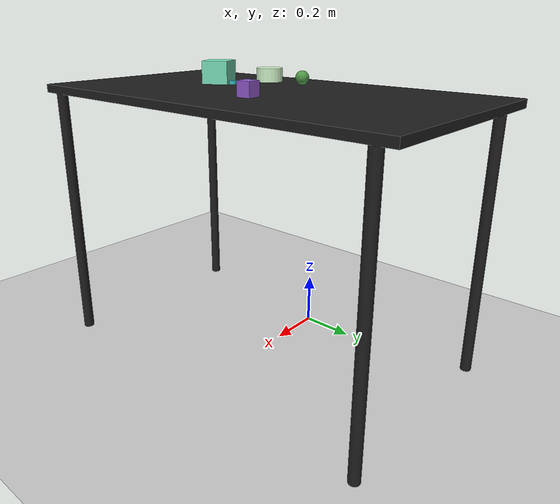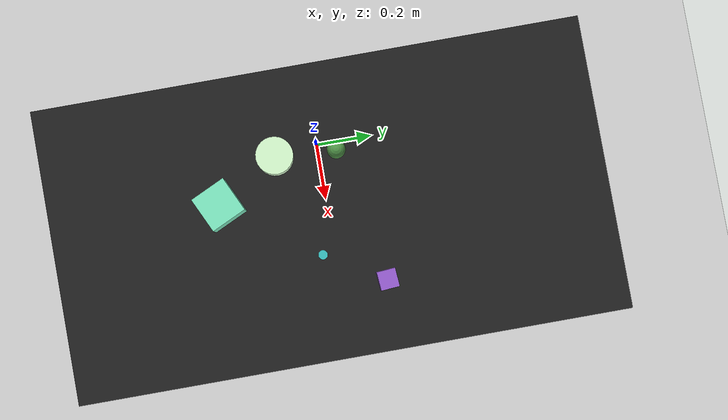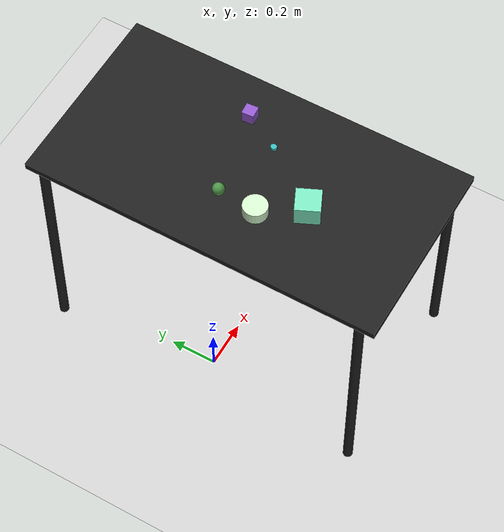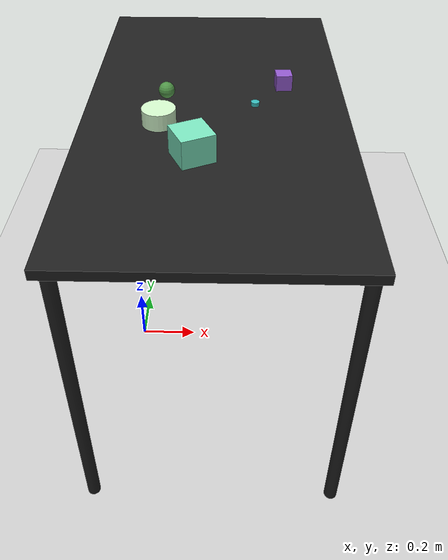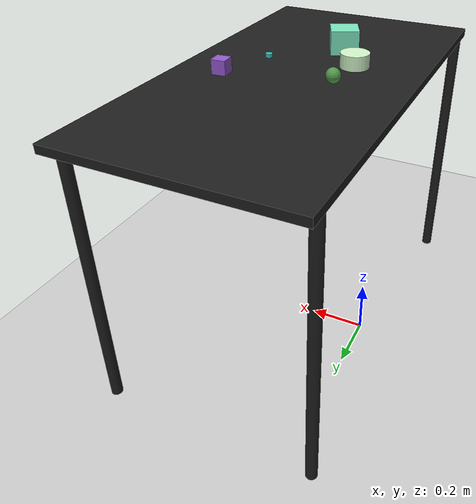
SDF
<?xml version="1.0" ?>
<sdf version="1.6">
  <world name="arm_world">
    <plugin filename="gz-sim-physics-system" name="gz::sim::systems::Physics">
      <engine>
        <filename>libgz-physics-bullet-featherstone-plugin.so</filename>
      </engine>
    </plugin>
    <plugin filename="gz-sim-user-commands-system" name="gz::sim::systems::UserCommands"/>
    <plugin filename="gz-sim-scene-broadcaster-system" name="gz::sim::systems::SceneBroadcaster"/>
    <plugin filename="gz-sim-sensors-system" name="gz::sim::systems::Sensors">
      <render_engine>ogre2</render_engine>
    </plugin>
    <gravity>0.0 0.0 -9.8</gravity>
    <scene>
      <shadows>false</shadows>
    </scene>
    <gui>
      <camera name="user_camera">
        <pose>0.75 -0.75 1.4 0 0.29 2.21</pose>
      </camera>
    </gui>
    <include>
      <uri>https://fuel.gazebosim.org/1.0/OpenRobotics/models/Sun</uri>
    </include>
    <model name="table">
      <static>true</static>
      <include>
        <uri>model://table</uri>
      </include>
      <pose>0.29 0 0 0 0 1.5708</pose>
    </model>
    <model name="ground_plane">
      <static>true</static>
      <link name="link">
        <collision name="collision">
          <geometry>
            <plane>
              <normal>0 0 1</normal>
            </plane>
          </geometry>
          <surface>
            <friction>
              <ode>
                <mu>1.0</mu>
                <mu2>1.0</mu2>
              </ode>
            </friction>
          </surface>
        </collision>
        <visual name="visual">
          <geometry>
            <plane>
              <normal>0 0 1</normal>
              <size>100 100</size>
            </plane>
          </geometry>
          <material>
            <ambient>0.8 0.8 0.8 1</ambient>
            <diffuse>0.8 0.8 0.8 1</diffuse>
            <specular>0.8 0.8 0.8 1</specular>
          </material>
        </visual>
      </link>
    </model>
    <model name="cylinder_l_0">
      <pose>0.127 -0.121 1.05 0 0 0.05</pose>
      <link name="cylinder_l_0_link">
        <inertial>
          <mass>0.05</mass>
          <inertia>
            <ixx>2.04e-7</ixx>
            <iyy>2.04e-7</iyy>
            <izz>3.9e-8</izz>
            <ixy>0</ixy>
            <ixz>0</ixz>
            <iyz>0</iyz>
          </inertia>
        </inertial>
        <collision name="cylinder_l_0_collision">
          <geometry>
            <cylinder>
              <radius>0.05</radius>
              <length>0.05</length>
            </cylinder>
          </geometry>
          <surface>
            <friction>
              <ode>
                <mu>0.8</mu>
                <mu2>0.8</mu2>
                <fdir1>0 0 1</fdir1>
                <slip1>0.001</slip1>
                <slip2>0.001</slip2>
              </ode>
              <torsional>
                <coefficient>0.1</coefficient>
                <surface_radius>0.015</surface_radius>
                <use_patch_radius>true</use_patch_radius>
              </torsional>
            </friction>
            <contact>
              <ode>
                <kp>1e5</kp>
                <kd>10</kd>
                <max_vel>0.1</max_vel>
                <min_depth>0.001</min_depth>
                <soft_cfm>0.01</soft_cfm>
                <soft_erp>0.2</soft_erp>
              </ode>
            </contact>
            <bounce>
              <restitution_coefficient>0.2</restitution_coefficient>
              <threshold>0.01</threshold>
            </bounce>
          </surface>
        </collision>
        <visual name="cylinder_l_0_visual">
          <geometry>
            <cylinder>
              <radius>0.05</radius>
              <length>0.05</length>
            </cylinder>
          </geometry>
          <material>
            <ambient>0.82 0.96 0.79 1</ambient>
            <diffuse>0.82 0.96 0.79 1</diffuse>
          </material>
        </visual>
        <velocity_decay>
          <linear>1</linear>
          <angular>1</angular>
        </velocity_decay>
      </link>
    </model>
    <model name="cylinder_s_1">
      <pose>0.407 -0.04 1.05 0 0 2.03</pose>
      <link name="cylinder_s_1_link">
        <inertial>
          <mass>0.05</mass>
          <inertia>
            <ixx>2.04e-7</ixx>
            <iyy>2.04e-7</iyy>
            <izz>3.9e-8</izz>
            <ixy>0</ixy>
            <ixz>0</ixz>
            <iyz>0</iyz>
          </inertia>
        </inertial>
        <collision name="cylinder_s_1_collision">
          <geometry>
            <cylinder>
              <radius>0.0125</radius>
              <length>0.0125</length>
            </cylinder>
          </geometry>
          <surface>
            <friction>
              <ode>
                <mu>0.8</mu>
                <mu2>0.8</mu2>
                <fdir1>0 0 1</fdir1>
                <slip1>0.001</slip1>
                <slip2>0.001</slip2>
              </ode>
              <torsional>
                <coefficient>0.1</coefficient>
                <surface_radius>0.015</surface_radius>
                <use_patch_radius>true</use_patch_radius>
              </torsional>
            </friction>
            <contact>
              <ode>
                <kp>1e5</kp>
                <kd>10</kd>
                <max_vel>0.1</max_vel>
                <min_depth>0.001</min_depth>
                <soft_cfm>0.01</soft_cfm>
                <soft_erp>0.2</soft_erp>
              </ode>
            </contact>
            <bounce>
              <restitution_coefficient>0.2</restitution_coefficient>
              <threshold>0.01</threshold>
            </bounce>
          </surface>
        </collision>
        <visual name="cylinder_s_1_visual">
          <geometry>
            <cylinder>
              <radius>0.0125</radius>
              <length>0.0125</length>
            </cylinder>
          </geometry>
          <material>
            <ambient>0.21 0.73 0.73 1</ambient>
            <diffuse>0.21 0.73 0.73 1</diffuse>
          </material>
        </visual>
        <velocity_decay>
          <linear>1</linear>
          <angular>1</angular>
        </velocity_decay>
      </link>
    </model>
    <model name="cube_m_2">
      <pose>0.5 0.117 1.05 0 0 3.22</pose>
      <link name="cube_m_2_link">
        <inertial>
          <mass>0.05</mass>
          <inertia>
            <ixx>2.04e-7</ixx>
            <iyy>2.04e-7</iyy>
            <izz>3.9e-8</izz>
            <ixy>0</ixy>
            <ixz>0</ixz>
            <iyz>0</iyz>
          </inertia>
        </inertial>
        <collision name="cube_m_2_collision">
          <geometry>
            <box>
              <size>0.05 0.05 0.05</size>
            </box>
          </geometry>
          <surface>
            <friction>
              <ode>
                <mu>0.8</mu>
                <mu2>0.8</mu2>
                <fdir1>0 0 1</fdir1>
                <slip1>0.001</slip1>
                <slip2>0.001</slip2>
              </ode>
              <torsional>
                <coefficient>0.1</coefficient>
                <surface_radius>0.015</surface_radius>
                <use_patch_radius>true</use_patch_radius>
              </torsional>
            </friction>
            <contact>
              <ode>
                <kp>1e5</kp>
                <kd>10</kd>
                <max_vel>0.1</max_vel>
                <min_depth>0.001</min_depth>
                <soft_cfm>0.01</soft_cfm>
                <soft_erp>0.2</soft_erp>
              </ode>
            </contact>
            <bounce>
              <restitution_coefficient>0.2</restitution_coefficient>
              <threshold>0.01</threshold>
            </bounce>
          </surface>
        </collision>
        <visual name="cube_m_2_visual">
          <geometry>
            <box>
              <size>0.05 0.05 0.05</size>
            </box>
          </geometry>
          <material>
            <ambient>0.57 0.35 0.8 1</ambient>
            <diffuse>0.57 0.35 0.8 1</diffuse>
          </material>
        </visual>
        <velocity_decay>
          <linear>1</linear>
          <angular>1</angular>
        </velocity_decay>
      </link>
    </model>
    <model name="sphere_m_3">
      <pose>0.137 0.043 1.05 0 0 5.67</pose>
      <link name="sphere_m_3_link">
        <inertial>
          <mass>0.05</mass>
          <inertia>
            <ixx>2.04e-7</ixx>
            <iyy>2.04e-7</iyy>
            <izz>3.9e-8</izz>
            <ixy>0</ixy>
            <ixz>0</ixz>
            <iyz>0</iyz>
          </inertia>
        </inertial>
        <collision name="sphere_m_3_collision">
          <geometry>
            <sphere>
              <radius>0.025</radius>
            </sphere>
          </geometry>
          <surface>
            <friction>
              <ode>
                <mu>0.8</mu>
                <mu2>0.8</mu2>
                <fdir1>0 0 1</fdir1>
                <slip1>0.001</slip1>
                <slip2>0.001</slip2>
              </ode>
              <torsional>
                <coefficient>0.1</coefficient>
                <surface_radius>0.015</surface_radius>
                <use_patch_radius>true</use_patch_radius>
              </torsional>
            </friction>
            <contact>
              <ode>
                <kp>1e5</kp>
                <kd>10</kd>
                <max_vel>0.1</max_vel>
                <min_depth>0.001</min_depth>
                <soft_cfm>0.01</soft_cfm>
                <soft_erp>0.2</soft_erp>
              </ode>
            </contact>
            <bounce>
              <restitution_coefficient>0.2</restitution_coefficient>
              <threshold>0.01</threshold>
            </bounce>
          </surface>
        </collision>
        <visual name="sphere_m_3_visual">
          <geometry>
            <sphere>
              <radius>0.025</radius>
            </sphere>
          </geometry>
          <material>
            <ambient>0.31 0.58 0.28 1</ambient>
            <diffuse>0.31 0.58 0.28 1</diffuse>
          </material>
        </visual>
        <velocity_decay>
          <linear>1</linear>
          <angular>1</angular>
        </velocity_decay>
      </link>
    </model>
    <model name="cube_l_4">
      <pose>0.231 -0.287 1.05 0 0 5.15</pose>
      <link name="cube_l_4_link">
        <inertial>
          <mass>0.05</mass>
          <inertia>
            <ixx>2.04e-7</ixx>
            <iyy>2.04e-7</iyy>
            <izz>3.9e-8</izz>
            <ixy>0</ixy>
            <ixz>0</ixz>
            <iyz>0</iyz>
          </inertia>
        </inertial>
        <collision name="cube_l_4_collision">
          <geometry>
            <box>
              <size>0.1 0.1 0.1</size>
            </box>
          </geometry>
          <surface>
            <friction>
              <ode>
                <mu>0.8</mu>
                <mu2>0.8</mu2>
                <fdir1>0 0 1</fdir1>
                <slip1>0.001</slip1>
                <slip2>0.001</slip2>
              </ode>
              <torsional>
                <coefficient>0.1</coefficient>
                <surface_radius>0.015</surface_radius>
                <use_patch_radius>true</use_patch_radius>
              </torsional>
            </friction>
            <contact>
              <ode>
                <kp>1e5</kp>
                <kd>10</kd>
                <max_vel>0.1</max_vel>
                <min_depth>0.001</min_depth>
                <soft_cfm>0.01</soft_cfm>
                <soft_erp>0.2</soft_erp>
              </ode>
            </contact>
            <bounce>
              <restitution_coefficient>0.2</restitution_coefficient>
              <threshold>0.01</threshold>
            </bounce>
          </surface>
        </collision>
        <visual name="cube_l_4_visual">
          <geometry>
            <box>
              <size>0.1 0.1 0.1</size>
            </box>
          </geometry>
          <material>
            <ambient>0.48 0.89 0.74 1</ambient>
            <diffuse>0.48 0.89 0.74 1</diffuse>
          </material>
        </visual>
        <velocity_decay>
          <linear>1</linear>
          <angular>1</angular>
        </velocity_decay>
      </link>
    </model>
  </world>
</sdf>

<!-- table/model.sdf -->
<sdf version="1.5">
  <model name="table">
    <static>true</static>
    <link name="link">
      <collision name="surface">
        <pose>0 0 1.0 0 0 0</pose>
        <geometry>
          <box>
            <size>1.5 0.8 0.03</size>
          </box>
        </geometry>
        <surface>
          <friction>
            <ode>
              <mu>0.6</mu>
              <mu2>0.6</mu2>
            </ode>
          </friction>
        </surface>
      </collision>
      <visual name="surface">
        <pose>0 0 1.0 0 0 0</pose>
        <geometry>
          <box>
            <size>1.5 0.8 0.03</size>
          </box>
        </geometry>
        <material>
          <script>
            <uri>file://media/materials/scripts/gazebo.material</uri>
            <name>Gazebo/Black</name>
          </script>
        </material>
      </visual>
      <collision name="front_left_leg">
        <pose>0.68 0.38 0.5 0 0 0</pose>
        <geometry>
          <cylinder>
            <radius>0.02</radius>
            <length>1.0</length>
          </cylinder>
        </geometry>
      </collision>
      <visual name="front_left_leg">
        <pose>0.68 0.38 0.5 0 0 0</pose>
        <geometry>
          <cylinder>
            <radius>0.02</radius>
            <length>1.0</length>
          </cylinder>
        </geometry>
        <material>
          <script>
            <uri>file://media/materials/scripts/gazebo.material</uri>
            <name>Gazebo/Black</name>
          </script>
        </material>
      </visual>
      <collision name="front_right_leg">
        <pose>0.68 -0.38 0.5 0 0 0</pose>
        <geometry>
          <cylinder>
            <radius>0.02</radius>
            <length>1.0</length>
          </cylinder>
        </geometry>
      </collision>
      <visual name="front_right_leg">
        <pose>0.68 -0.38 0.5 0 0 0</pose>
        <geometry>
          <cylinder>
            <radius>0.02</radius>
            <length>1.0</length>
          </cylinder>
        </geometry>
        <material>
          <script>
            <uri>file://media/materials/scripts/gazebo.material</uri>
            <name>Gazebo/Black</name>
          </script>
        </material>
      </visual>
      <collision name="back_right_leg">
        <pose>-0.68 -0.38 0.5 0 0 0</pose>
        <geometry>
          <cylinder>
            <radius>0.02</radius>
            <length>1.0</length>
          </cylinder>
        </geometry>
      </collision>
      <visual name="back_right_leg">
        <pose>-0.68 -0.38 0.5 0 0 0</pose>
        <geometry>
          <cylinder>
            <radius>0.02</radius>
            <length>1.0</length>
          </cylinder>
        </geometry>
        <material>
          <script>
            <uri>file://media/materials/scripts/gazebo.material</uri>
            <name>Gazebo/Black</name>
          </script>
        </material>
      </visual>
      <collision name="back_left_leg">
        <pose>-0.68 0.38 0.5 0 0 0</pose>
        <geometry>
          <cylinder>
            <radius>0.02</radius>
            <length>1.0</length>
          </cylinder>
        </geometry>
      </collision>
      <visual name="back_left_leg">
        <pose>-0.68 0.38 0.5 0 0 0</pose>
        <geometry>
          <cylinder>
            <radius>0.02</radius>
            <length>1.0</length>
          </cylinder>
        </geometry>
        <material>
          <script>
            <uri>file://media/materials/scripts/gazebo.material</uri>
            <name>Gazebo/Black</name>
          </script>
        </material>
      </visual>
    </link>
  </model>
</sdf>
